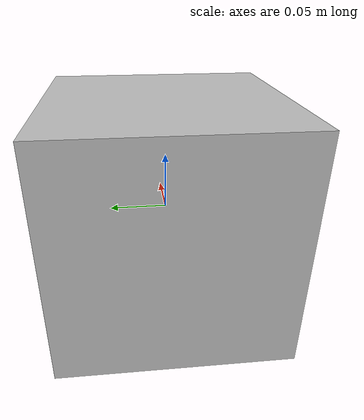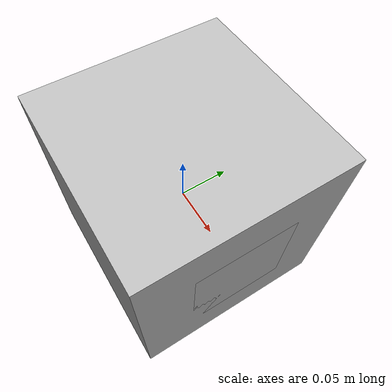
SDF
<?xml version="1.0" ?>
<sdf version="1.10">
  <world name="joint_motion">
    <physics name="default_physics" type="ignored">
      <max_step_size>0.001</max_step_size>
      <real_time_factor>1.0</real_time_factor>
    </physics>

    <model name="joint_motion_probe">
      <pose>0 0 0 0 0 0</pose>

      <link name="base">
        <inertial>
          <mass>1.0</mass>
          <inertia>
            <ixx>0.01</ixx>
            <iyy>0.01</iyy>
            <izz>0.01</izz>
          </inertia>
        </inertial>
        <collision name="base_collision">
          <geometry>
            <box>
              <size>0.2 0.2 0.2</size>
            </box>
          </geometry>
        </collision>
        <visual name="base_visual">
          <geometry>
            <box>
              <size>0.2 0.2 0.2</size>
            </box>
          </geometry>
        </visual>
      </link>

      <link name="slider">
        <pose>0.05 0 0 0 0 0</pose>
        <inertial>
          <mass>0.25</mass>
          <inertia>
            <ixx>0.001</ixx>
            <iyy>0.001</iyy>
            <izz>0.001</izz>
          </inertia>
        </inertial>
        <collision name="slider_collision">
          <geometry>
            <box>
              <size>0.1 0.1 0.1</size>
            </box>
          </geometry>
        </collision>
        <visual name="slider_visual">
          <geometry>
            <box>
              <size>0.1 0.1 0.1</size>
            </box>
          </geometry>
        </visual>
      </link>

      <joint name="slider_joint" type="prismatic">
        <parent>base</parent>
        <child>slider</child>
        <axis>
          <xyz>1 0 0</xyz>
          <limit>
            <lower>-2.0</lower>
            <upper>2.0</upper>
            <effort>10.0</effort>
            <velocity>0.5</velocity>
          </limit>
        </axis>
      </joint>

      <plugin
        filename="gz-sim-joint-controller-system"
        name="gz::sim::systems::JointController">
        <joint_name>slider_joint</joint_name>
        <initial_velocity>0.2</initial_velocity>
      </plugin>
    </model>
  </world>
</sdf>
